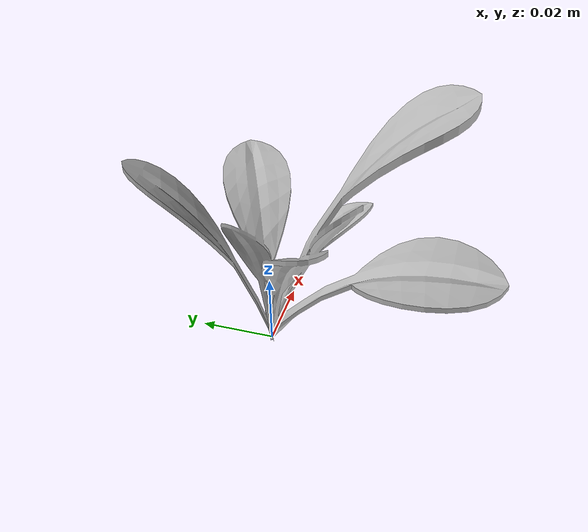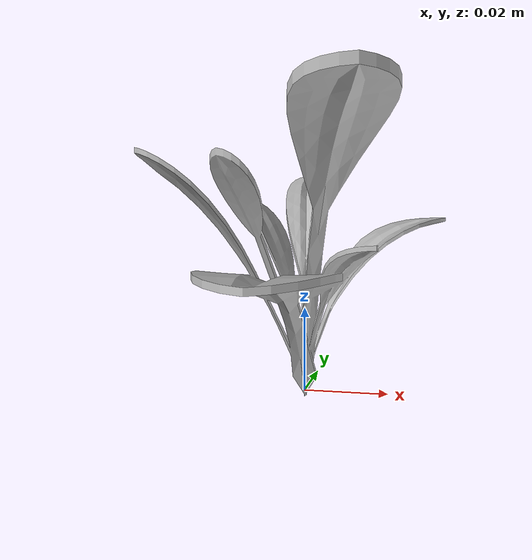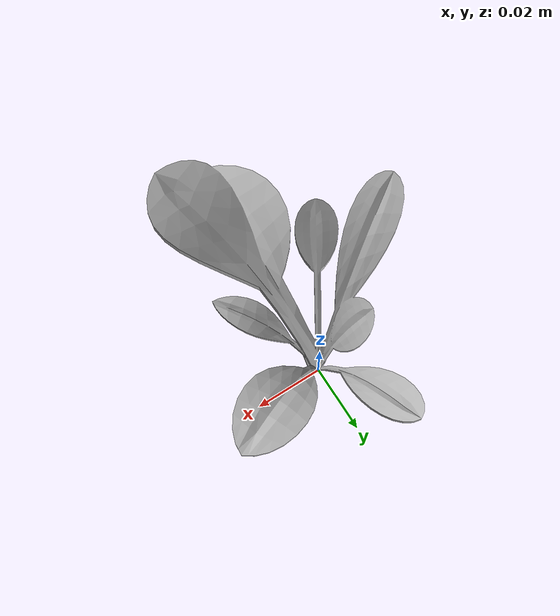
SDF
<sdf version="1.6">
  <model name="sugar_beet_61">
    <static>true</static>
    <link name="body">
      <visual name="visual">
        <geometry>
          <mesh>
            <uri>file:///sugar_beet_61/media/sugar_beet.dae</uri>
          </mesh>
        </geometry>
      </visual>
    </link>
  </model>
</sdf>
